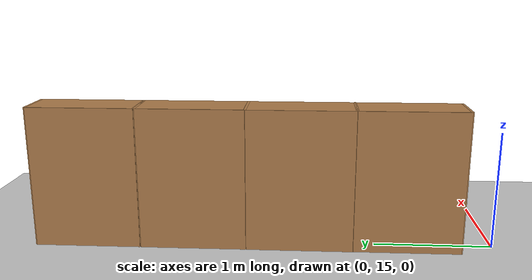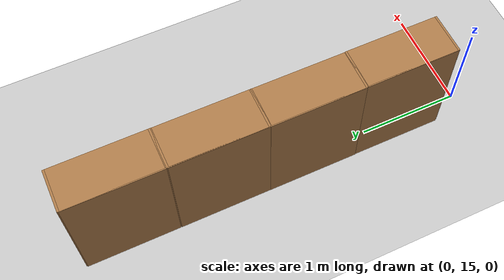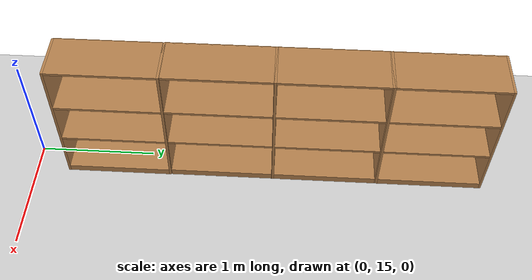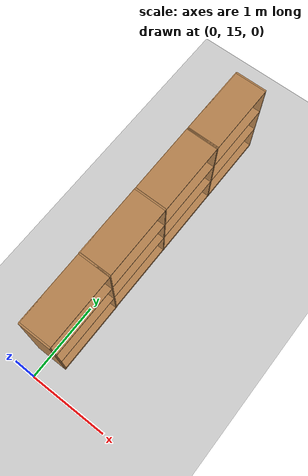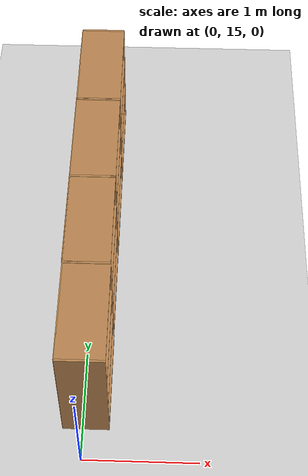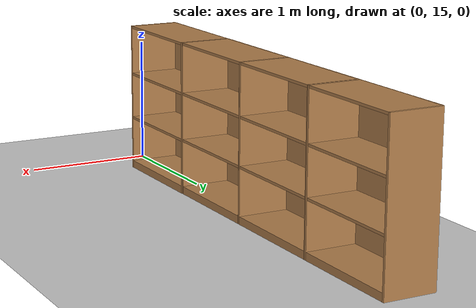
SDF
<sdf version="1.6">
 <world name="default">
  <model name="ground_plane">
   <static>1</static>
   <link name="link">
    <collision name="collision">
     <geometry><plane><normal>0 0 1</normal><size>100 100</size></plane></geometry>
     <surface><friction><ode><mu>100</mu><mu2>50</mu2></ode></friction></surface>
    </collision>
    <visual name="visual">
     <cast_shadows>0</cast_shadows>
     <geometry><plane><normal>0 0 1</normal><size>100 100</size></plane></geometry>
     <material>
      <script><uri>file://media/materials/scripts/gazebo.material</uri><name>Gazebo/Grey</name></script>
     </material>
    </visual>
   </link>
  </model>
  <model name="Bookshelf-4_clone_31_clone_0">
   <model name="bookshelf">
    <static>1</static>
    <link name="link">
     <inertial><mass>1</mass></inertial>
     <collision name="back">
      <pose>0 0.005 0.6 0 -0 0</pose>
      <geometry><box><size>0.9 0.01 1.2</size></box></geometry>
     </collision>
     <visual name="visual1">
      <pose>0 0.005 0.6 0 -0 0</pose>
      <geometry><box><size>0.9 0.01 1.2</size></box></geometry>
      <material>
       <script><uri>file://media/materials/scripts/gazebo.material</uri><name>Gazebo/Wood</name></script>
      </material>
     </visual>
     <collision name="left_side">
      <pose>0.45 -0.195 0.6 0 -0 0</pose>
      <geometry><box><size>0.02 0.4 1.2</size></box></geometry>
     </collision>
     <visual name="visual2">
      <pose>0.45 -0.195 0.6 0 -0 0</pose>
      <geometry><box><size>0.02 0.4 1.2</size></box></geometry>
      <material>
       <script><uri>file://media/materials/scripts/gazebo.material</uri><name>Gazebo/Wood</name></script>
      </material>
     </visual>
     <collision name="right_side">
      <pose>-0.45 -0.195 0.6 0 -0 0</pose>
      <geometry><box><size>0.02 0.4 1.2</size></box></geometry>
     </collision>
     <visual name="visual3">
      <pose>-0.45 -0.195 0.6 0 -0 0</pose>
      <geometry><box><size>0.02 0.4 1.2</size></box></geometry>
      <material>
       <script><uri>file://media/materials/scripts/gazebo.material</uri><name>Gazebo/Wood</name></script>
      </material>
     </visual>
     <collision name="bottom">
      <pose>0 -0.195 0.03 0 -0 0</pose>
      <geometry><box><size>0.88 0.4 0.06</size></box></geometry>
     </collision>
     <visual name="visual4">
      <pose>0 -0.195 0.03 0 -0 0</pose>
      <geometry><box><size>0.88 0.4 0.06</size></box></geometry>
      <material>
       <script><uri>file://media/materials/scripts/gazebo.material</uri><name>Gazebo/Wood</name></script>
      </material>
     </visual>
     <collision name="top">
      <pose>0 -0.195 1.19 0 -0 0</pose>
      <geometry><box><size>0.88 0.4 0.02</size></box></geometry>
     </collision>
     <visual name="visual5">
      <pose>0 -0.195 1.19 0 -0 0</pose>
      <geometry><box><size>0.88 0.4 0.02</size></box></geometry>
      <material>
       <script><uri>file://media/materials/scripts/gazebo.material</uri><name>Gazebo/Wood</name></script>
      </material>
     </visual>
     <collision name="low_shelf">
      <pose>0 -0.195 0.43 0 -0 0</pose>
      <geometry><box><size>0.88 0.4 0.02</size></box></geometry>
     </collision>
     <visual name="visual6">
      <pose>0 -0.195 0.43 0 -0 0</pose>
      <geometry><box><size>0.88 0.4 0.02</size></box></geometry>
      <material>
       <script><uri>file://media/materials/scripts/gazebo.material</uri><name>Gazebo/Wood</name></script>
      </material>
     </visual>
     <collision name="high_shelf">
      <pose>0 -0.195 0.8 0 -0 0</pose>
      <geometry><box><size>0.88 0.4 0.02</size></box></geometry>
     </collision>
     <visual name="visual7">
      <pose>0 -0.195 0.8 0 -0 0</pose>
      <geometry><box><size>0.88 0.4 0.02</size></box></geometry>
      <material>
       <script><uri>file://media/materials/scripts/gazebo.material</uri><name>Gazebo/Wood</name></script>
      </material>
     </visual>
    </link>
    <pose>-1.35671 -0.002097 0 0 -0 0</pose>
   </model>
   <model name="bookshelf_0">
    <static>1</static>
    <link name="link">
     <inertial><mass>1</mass></inertial>
     <collision name="back">
      <pose>0 0.005 0.6 0 -0 0</pose>
      <geometry><box><size>0.9 0.01 1.2</size></box></geometry>
     </collision>
     <visual name="visual1">
      <pose>0 0.005 0.6 0 -0 0</pose>
      <geometry><box><size>0.9 0.01 1.2</size></box></geometry>
      <material>
       <script><uri>file://media/materials/scripts/gazebo.material</uri><name>Gazebo/Wood</name></script>
      </material>
     </visual>
     <collision name="left_side">
      <pose>0.45 -0.195 0.6 0 -0 0</pose>
      <geometry><box><size>0.02 0.4 1.2</size></box></geometry>
     </collision>
     <visual name="visual2">
      <pose>0.45 -0.195 0.6 0 -0 0</pose>
      <geometry><box><size>0.02 0.4 1.2</size></box></geometry>
      <material>
       <script><uri>file://media/materials/scripts/gazebo.material</uri><name>Gazebo/Wood</name></script>
      </material>
     </visual>
     <collision name="right_side">
      <pose>-0.45 -0.195 0.6 0 -0 0</pose>
      <geometry><box><size>0.02 0.4 1.2</size></box></geometry>
     </collision>
     <visual name="visual3">
      <pose>-0.45 -0.195 0.6 0 -0 0</pose>
      <geometry><box><size>0.02 0.4 1.2</size></box></geometry>
      <material>
       <script><uri>file://media/materials/scripts/gazebo.material</uri><name>Gazebo/Wood</name></script>
      </material>
     </visual>
     <collision name="bottom">
      <pose>0 -0.195 0.03 0 -0 0</pose>
      <geometry><box><size>0.88 0.4 0.06</size></box></geometry>
     </collision>
     <visual name="visual4">
      <pose>0 -0.195 0.03 0 -0 0</pose>
      <geometry><box><size>0.88 0.4 0.06</size></box></geometry>
      <material>
       <script><uri>file://media/materials/scripts/gazebo.material</uri><name>Gazebo/Wood</name></script>
      </material>
     </visual>
     <collision name="top">
      <pose>0 -0.195 1.19 0 -0 0</pose>
      <geometry><box><size>0.88 0.4 0.02</size></box></geometry>
     </collision>
     <visual name="visual5">
      <pose>0 -0.195 1.19 0 -0 0</pose>
      <geometry><box><size>0.88 0.4 0.02</size></box></geometry>
      <material>
       <script><uri>file://media/materials/scripts/gazebo.material</uri><name>Gazebo/Wood</name></script>
      </material>
     </visual>
     <collision name="low_shelf">
      <pose>0 -0.195 0.43 0 -0 0</pose>
      <geometry><box><size>0.88 0.4 0.02</size></box></geometry>
     </collision>
     <visual name="visual6">
      <pose>0 -0.195 0.43 0 -0 0</pose>
      <geometry><box><size>0.88 0.4 0.02</size></box></geometry>
      <material>
       <script><uri>file://media/materials/scripts/gazebo.material</uri><name>Gazebo/Wood</name></script>
      </material>
     </visual>
     <collision name="high_shelf">
      <pose>0 -0.195 0.8 0 -0 0</pose>
      <geometry><box><size>0.88 0.4 0.02</size></box></geometry>
     </collision>
     <visual name="visual7">
      <pose>0 -0.195 0.8 0 -0 0</pose>
      <geometry><box><size>0.88 0.4 0.02</size></box></geometry>
      <material>
       <script><uri>file://media/materials/scripts/gazebo.material</uri><name>Gazebo/Wood</name></script>
      </material>
     </visual>
    </link>
    <pose>-0.452974 0.001386 0 0 -0 0</pose>
   </model>
   <model name="bookshelf_1">
    <static>1</static>
    <link name="link">
     <inertial><mass>1</mass></inertial>
     <collision name="back">
      <pose>0 0.005 0.6 0 -0 0</pose>
      <geometry><box><size>0.9 0.01 1.2</size></box></geometry>
     </collision>
     <visual name="visual1">
      <pose>0 0.005 0.6 0 -0 0</pose>
      <geometry><box><size>0.9 0.01 1.2</size></box></geometry>
      <material>
       <script><uri>file://media/materials/scripts/gazebo.material</uri><name>Gazebo/Wood</name></script>
      </material>
     </visual>
     <collision name="left_side">
      <pose>0.45 -0.195 0.6 0 -0 0</pose>
      <geometry><box><size>0.02 0.4 1.2</size></box></geometry>
     </collision>
     <visual name="visual2">
      <pose>0.45 -0.195 0.6 0 -0 0</pose>
      <geometry><box><size>0.02 0.4 1.2</size></box></geometry>
      <material>
       <script><uri>file://media/materials/scripts/gazebo.material</uri><name>Gazebo/Wood</name></script>
      </material>
     </visual>
     <collision name="right_side">
      <pose>-0.45 -0.195 0.6 0 -0 0</pose>
      <geometry><box><size>0.02 0.4 1.2</size></box></geometry>
     </collision>
     <visual name="visual3">
      <pose>-0.45 -0.195 0.6 0 -0 0</pose>
      <geometry><box><size>0.02 0.4 1.2</size></box></geometry>
      <material>
       <script><uri>file://media/materials/scripts/gazebo.material</uri><name>Gazebo/Wood</name></script>
      </material>
     </visual>
     <collision name="bottom">
      <pose>0 -0.195 0.03 0 -0 0</pose>
      <geometry><box><size>0.88 0.4 0.06</size></box></geometry>
     </collision>
     <visual name="visual4">
      <pose>0 -0.195 0.03 0 -0 0</pose>
      <geometry><box><size>0.88 0.4 0.06</size></box></geometry>
      <material>
       <script><uri>file://media/materials/scripts/gazebo.material</uri><name>Gazebo/Wood</name></script>
      </material>
     </visual>
     <collision name="top">
      <pose>0 -0.195 1.19 0 -0 0</pose>
      <geometry><box><size>0.88 0.4 0.02</size></box></geometry>
     </collision>
     <visual name="visual5">
      <pose>0 -0.195 1.19 0 -0 0</pose>
      <geometry><box><size>0.88 0.4 0.02</size></box></geometry>
      <material>
       <script><uri>file://media/materials/scripts/gazebo.material</uri><name>Gazebo/Wood</name></script>
      </material>
     </visual>
     <collision name="low_shelf">
      <pose>0 -0.195 0.43 0 -0 0</pose>
      <geometry><box><size>0.88 0.4 0.02</size></box></geometry>
     </collision>
     <visual name="visual6">
      <pose>0 -0.195 0.43 0 -0 0</pose>
      <geometry><box><size>0.88 0.4 0.02</size></box></geometry>
      <material>
       <script><uri>file://media/materials/scripts/gazebo.material</uri><name>Gazebo/Wood</name></script>
      </material>
     </visual>
     <collision name="high_shelf">
      <pose>0 -0.195 0.8 0 -0 0</pose>
      <geometry><box><size>0.88 0.4 0.02</size></box></geometry>
     </collision>
     <visual name="visual7">
      <pose>0 -0.195 0.8 0 -0 0</pose>
      <geometry><box><size>0.88 0.4 0.02</size></box></geometry>
      <material>
       <script><uri>file://media/materials/scripts/gazebo.material</uri><name>Gazebo/Wood</name></script>
      </material>
     </visual>
    </link>
    <pose>0.450456 0.000733 0 0 -0 0</pose>
   </model>
   <model name="bookshelf_2">
    <static>1</static>
    <link name="link">
     <inertial><mass>1</mass></inertial>
     <collision name="back">
      <pose>0 0.005 0.6 0 -0 0</pose>
      <geometry><box><size>0.9 0.01 1.2</size></box></geometry>
     </collision>
     <visual name="visual1">
      <pose>0 0.005 0.6 0 -0 0</pose>
      <geometry><box><size>0.9 0.01 1.2</size></box></geometry>
      <material>
       <script><uri>file://media/materials/scripts/gazebo.material</uri><name>Gazebo/Wood</name></script>
      </material>
     </visual>
     <collision name="left_side">
      <pose>0.45 -0.195 0.6 0 -0 0</pose>
      <geometry><box><size>0.02 0.4 1.2</size></box></geometry>
     </collision>
     <visual name="visual2">
      <pose>0.45 -0.195 0.6 0 -0 0</pose>
      <geometry><box><size>0.02 0.4 1.2</size></box></geometry>
      <material>
       <script><uri>file://media/materials/scripts/gazebo.material</uri><name>Gazebo/Wood</name></script>
      </material>
     </visual>
     <collision name="right_side">
      <pose>-0.45 -0.195 0.6 0 -0 0</pose>
      <geometry><box><size>0.02 0.4 1.2</size></box></geometry>
     </collision>
     <visual name="visual3">
      <pose>-0.45 -0.195 0.6 0 -0 0</pose>
      <geometry><box><size>0.02 0.4 1.2</size></box></geometry>
      <material>
       <script><uri>file://media/materials/scripts/gazebo.material</uri><name>Gazebo/Wood</name></script>
      </material>
     </visual>
     <collision name="bottom">
      <pose>0 -0.195 0.03 0 -0 0</pose>
      <geometry><box><size>0.88 0.4 0.06</size></box></geometry>
     </collision>
     <visual name="visual4">
      <pose>0 -0.195 0.03 0 -0 0</pose>
      <geometry><box><size>0.88 0.4 0.06</size></box></geometry>
      <material>
       <script><uri>file://media/materials/scripts/gazebo.material</uri><name>Gazebo/Wood</name></script>
      </material>
     </visual>
     <collision name="top">
      <pose>0 -0.195 1.19 0 -0 0</pose>
      <geometry><box><size>0.88 0.4 0.02</size></box></geometry>
     </collision>
     <visual name="visual5">
      <pose>0 -0.195 1.19 0 -0 0</pose>
      <geometry><box><size>0.88 0.4 0.02</size></box></geometry>
      <material>
       <script><uri>file://media/materials/scripts/gazebo.material</uri><name>Gazebo/Wood</name></script>
      </material>
     </visual>
     <collision name="low_shelf">
      <pose>0 -0.195 0.43 0 -0 0</pose>
      <geometry><box><size>0.88 0.4 0.02</size></box></geometry>
     </collision>
     <visual name="visual6">
      <pose>0 -0.195 0.43 0 -0 0</pose>
      <geometry><box><size>0.88 0.4 0.02</size></box></geometry>
      <material>
       <script><uri>file://media/materials/scripts/gazebo.material</uri><name>Gazebo/Wood</name></script>
      </material>
     </visual>
     <collision name="high_shelf">
      <pose>0 -0.195 0.8 0 -0 0</pose>
      <geometry><box><size>0.88 0.4 0.02</size></box></geometry>
     </collision>
     <visual name="visual7">
      <pose>0 -0.195 0.8 0 -0 0</pose>
      <geometry><box><size>0.88 0.4 0.02</size></box></geometry>
      <material>
       <script><uri>file://media/materials/scripts/gazebo.material</uri><name>Gazebo/Wood</name></script>
      </material>
     </visual>
    </link>
    <pose>1.35922 -1.7e-05 0 0 -0 0</pose>
   </model>
   <static>0</static>
   <pose>-0.169177 17.0963 0 0 -0 1.5707</pose>
  </model>
 </world>
</sdf>
